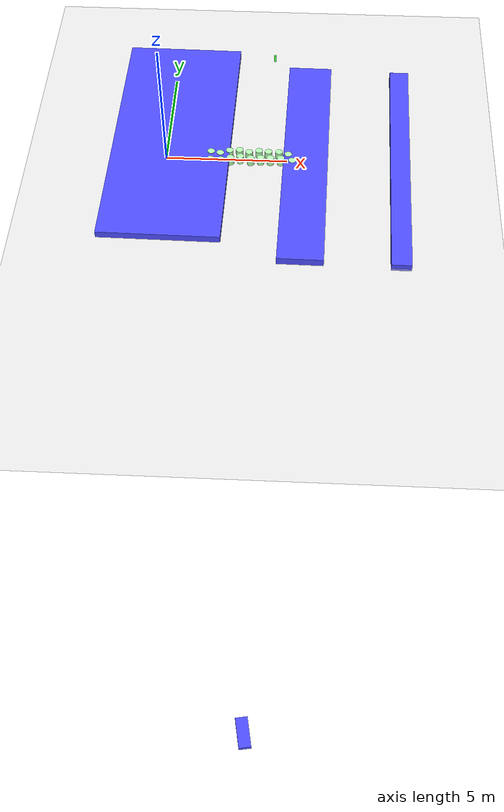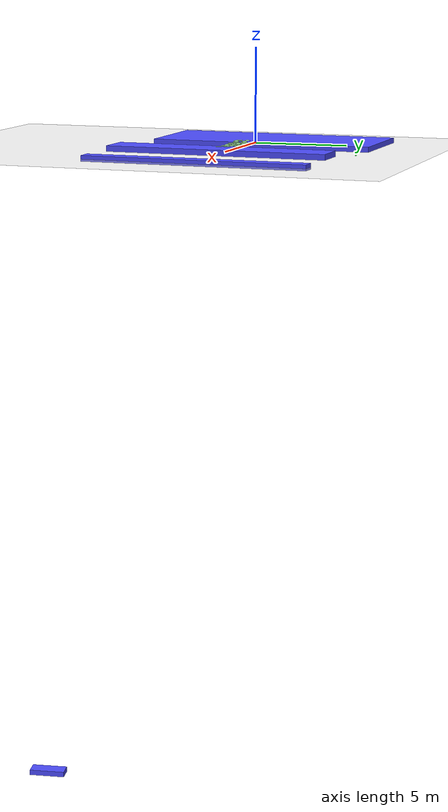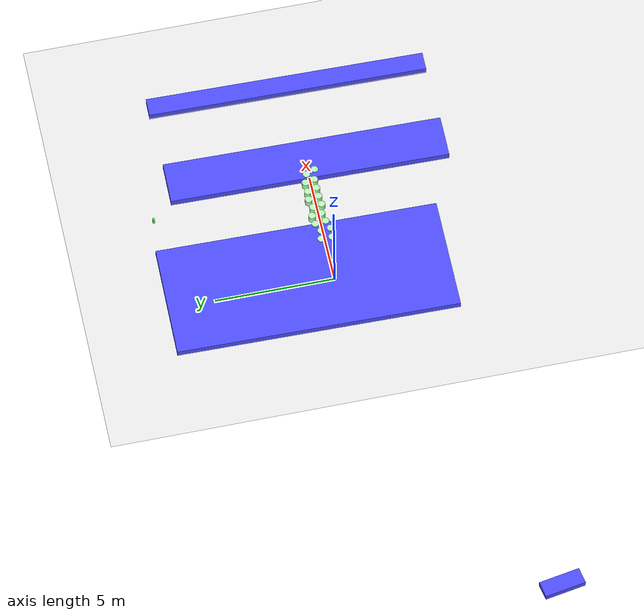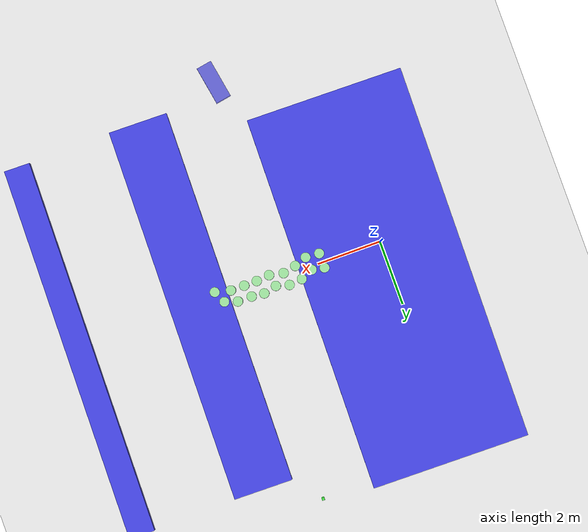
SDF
<sdf version="1.7">
 <world name="default">
  <light name="sun" type="directional">
   <pose>0 0 10 0 -0 0</pose>
   <diffuse>0.8 0.8 0.8 1</diffuse>
   <specular>0.2 0.2 0.2 1</specular>
   <attenuation>
    <range>1000</range>
    <constant>0.9</constant>
    <linear>0.01</linear>
    <quadratic>0.001</quadratic>
   </attenuation>
   <direction>-0.5 0.1 -0.9</direction>
   <spot><inner_angle>0</inner_angle><outer_angle>0</outer_angle><falloff>0</falloff></spot>
  </light>
  <model name="ground_plane">
   <static>1</static>
   <link name="link">
    <collision name="collision">
     <geometry><plane><normal>0 0 1</normal><size>100 100</size></plane></geometry>
     <surface><friction><ode><mu>100</mu><mu2>50</mu2></ode></friction></surface>
    </collision>
    <visual name="visual">
     <cast_shadows>0</cast_shadows>
     <geometry><plane><normal>0 0 1</normal><size>100 100</size></plane></geometry>
     <material>
      <script><uri>file://media/materials/scripts/gazebo.material</uri><name>Gazebo/Grey</name></script>
     </material>
    </visual>
   </link>
  </model>
  <gravity>0 0 -9.8</gravity>
  <magnetic_field>6e-06 2.3e-05 -4.2e-05</magnetic_field>
  <atmosphere type="adiabatic"/>
  <physics type="ode">
   <max_step_size>0.001</max_step_size>
   <real_time_factor>1</real_time_factor>
   <real_time_update_rate>1000</real_time_update_rate>
  </physics>
  <scene><ambient>0.4 0.4 0.4 1</ambient><background>0.7 0.7 0.7 1</background><shadows>1</shadows></scene>
  <spherical_coordinates>
   <surface_model>EARTH_WGS84</surface_model>
   <latitude_deg>0</latitude_deg>
   <longitude_deg>0</longitude_deg>
   <elevation>0</elevation>
   <heading_deg>0</heading_deg>
  </spherical_coordinates>
  <model name="ban_200_80_30_clone_clone">
   <link name="link">
    <inertial>
     <mass>1</mass>
     <inertia>
      <ixx>0.166667</ixx>
      <ixy>0</ixy>
      <ixz>0</ixz>
      <iyy>0.166667</iyy>
      <iyz>0</iyz>
      <izz>0.166667</izz>
     </inertia>
    </inertial>
    <visual name="visual">
     <geometry><box><size>2 0.8 0.3</size></box></geometry>
     <material>
      <script><name>Gazebo/Grey</name><uri>file://media/materials/scripts/gazebo.material</uri></script>
      <shader type="pixel"><normal_map>__default__</normal_map></shader>
      <ambient>0.3 0.3 1 1</ambient>
      <diffuse>0.7 0.7 0.7 1</diffuse>
      <specular>0.01 0.01 0.01 1</specular>
      <emissive>0 0 0 1</emissive>
     </material>
    </visual>
    <collision name="collision">
     <geometry><box><size>2 0.8 0.3</size></box></geometry>
     <surface>
      <friction>
       <ode><mu>1</mu><mu2>1</mu2><fdir1>0 0 0</fdir1><slip1>0</slip1><slip2>0</slip2></ode>
       <torsional>
        <coefficient>1</coefficient>
        <patch_radius>0</patch_radius>
        <surface_radius>0</surface_radius>
        <use_patch_radius>1</use_patch_radius>
        <ode><slip>0</slip></ode>
       </torsional>
      </friction>
      <bounce><restitution_coefficient>0</restitution_coefficient><threshold>1e+06</threshold></bounce>
      <contact>
       <collide_without_contact>0</collide_without_contact>
       <collide_without_contact_bitmask>1</collide_without_contact_bitmask>
       <collide_bitmask>1</collide_bitmask>
       <ode>
        <soft_cfm>0</soft_cfm>
        <soft_erp>0.2</soft_erp>
        <kp>1e+13</kp>
        <kd>1</kd>
        <max_vel>0.01</max_vel>
        <min_depth>0</min_depth>
       </ode>
       <bullet>
        <split_impulse>1</split_impulse>
        <split_impulse_penetration_threshold>-0.01</split_impulse_penetration_threshold>
        <soft_cfm>0</soft_cfm>
        <soft_erp>0.2</soft_erp>
        <kp>1e+13</kp>
        <kd>1</kd>
       </bullet>
      </contact>
     </surface>
    </collision>
   </link>
   <static>1</static>
   <pose>3.32802 -11.2985 -36.3188 0 0 -1.39548</pose>
  </model>
  <model name="ban_400_80_30_clone">
   <link name="link">
    <inertial>
     <mass>1</mass>
     <inertia>
      <ixx>0.166667</ixx>
      <ixy>0</ixy>
      <ixz>0</ixz>
      <iyy>0.166667</iyy>
      <iyz>0</iyz>
      <izz>0.166667</izz>
     </inertia>
    </inertial>
    <visual name="visual">
     <geometry><box><size>11.7457 0.8 0.3</size></box></geometry>
     <material>
      <script><name>Gazebo/Grey</name><uri>file://media/materials/scripts/gazebo.material</uri></script>
      <shader type="pixel"><normal_map>__default__</normal_map></shader>
      <ambient>0.3 0.3 1 1</ambient>
      <diffuse>0.7 0.7 0.7 1</diffuse>
      <specular>0.01 0.01 0.01 1</specular>
      <emissive>0 0 0 1</emissive>
     </material>
    </visual>
    <collision name="collision">
     <geometry><box><size>11.7457 0.8 0.3</size></box></geometry>
     <surface>
      <friction>
       <ode><mu>1</mu><mu2>1</mu2><fdir1>0 0 0</fdir1><slip1>0</slip1><slip2>0</slip2></ode>
       <torsional>
        <coefficient>1</coefficient>
        <patch_radius>0</patch_radius>
        <surface_radius>0</surface_radius>
        <use_patch_radius>1</use_patch_radius>
        <ode><slip>0</slip></ode>
       </torsional>
      </friction>
      <bounce><restitution_coefficient>0</restitution_coefficient><threshold>1e+06</threshold></bounce>
      <contact>
       <collide_without_contact>0</collide_without_contact>
       <collide_without_contact_bitmask>1</collide_without_contact_bitmask>
       <collide_bitmask>1</collide_bitmask>
       <ode>
        <soft_cfm>0</soft_cfm>
        <soft_erp>0.2</soft_erp>
        <kp>1e+13</kp>
        <kd>1</kd>
        <max_vel>0.01</max_vel>
        <min_depth>0</min_depth>
       </ode>
       <bullet>
        <split_impulse>1</split_impulse>
        <split_impulse_penetration_threshold>-0.01</split_impulse_penetration_threshold>
        <soft_cfm>0</soft_cfm>
        <soft_erp>0.2</soft_erp>
        <kp>1e+13</kp>
        <kd>1</kd>
       </bullet>
      </contact>
     </surface>
    </collision>
   </link>
   <static>1</static>
   <pose>9.68721 0.016567 0 0 -0 1.55763</pose>
  </model>
  <model name="mhz_8_30_clone">
   <link name="link">
    <inertial>
     <mass>1</mass>
     <inertia>
      <ixx>0.166667</ixx>
      <ixy>0</ixy>
      <ixz>0</ixz>
      <iyy>0.166667</iyy>
      <iyz>0</iyz>
      <izz>0.166667</izz>
     </inertia>
    </inertial>
    <visual name="visual">
     <geometry><box><size>0.08 0.08 0.3</size></box></geometry>
     <material>
      <script><name>Gazebo/Grey</name><uri>file://media/materials/scripts/gazebo.material</uri></script>
      <shader type="pixel"><normal_map>__default__</normal_map></shader>
      <ambient>0.3 1 0.3 1</ambient>
      <diffuse>0.7 0.7 0.7 1</diffuse>
      <specular>0.01 0.01 0.01 1</specular>
      <emissive>0 0 0 1</emissive>
     </material>
    </visual>
    <collision name="collision">
     <geometry><box><size>0.08 0.08 0.3</size></box></geometry>
     <surface>
      <friction>
       <ode><mu>1</mu><mu2>1</mu2><fdir1>0 0 0</fdir1><slip1>0</slip1><slip2>0</slip2></ode>
       <torsional>
        <coefficient>1</coefficient>
        <patch_radius>0</patch_radius>
        <surface_radius>0</surface_radius>
        <use_patch_radius>1</use_patch_radius>
        <ode><slip>0</slip></ode>
       </torsional>
      </friction>
      <bounce><restitution_coefficient>0</restitution_coefficient><threshold>1e+06</threshold></bounce>
      <contact>
       <collide_without_contact>0</collide_without_contact>
       <collide_without_contact_bitmask>1</collide_without_contact_bitmask>
       <collide_bitmask>1</collide_bitmask>
       <ode>
        <soft_cfm>0</soft_cfm>
        <soft_erp>0.2</soft_erp>
        <kp>1e+13</kp>
        <kd>1</kd>
        <max_vel>0.01</max_vel>
        <min_depth>0</min_depth>
       </ode>
       <bullet>
        <split_impulse>1</split_impulse>
        <split_impulse_penetration_threshold>-0.01</split_impulse_penetration_threshold>
        <soft_cfm>0</soft_cfm>
        <soft_erp>0.2</soft_erp>
        <kp>1e+13</kp>
        <kd>1</kd>
       </bullet>
      </contact>
     </surface>
    </collision>
   </link>
   <static>1</static>
   <pose>4.25594 6.71166 0.134436 0 -0 0</pose>
  </model>
  <model name="ban_400_80_30_clone_clone_clone">
   <link name="link">
    <inertial>
     <mass>1</mass>
     <inertia>
      <ixx>0.166667</ixx>
      <ixy>0</ixy>
      <ixz>0</ixz>
      <iyy>0.166667</iyy>
      <iyz>0</iyz>
      <izz>0.166667</izz>
     </inertia>
    </inertial>
    <visual name="visual">
     <geometry><box><size>11.703 1.83242 0.3</size></box></geometry>
     <material>
      <script><name>Gazebo/Grey</name><uri>file://media/materials/scripts/gazebo.material</uri></script>
      <shader type="pixel"><normal_map>__default__</normal_map></shader>
      <ambient>0.3 0.3 1 1</ambient>
      <diffuse>0.7 0.7 0.7 1</diffuse>
      <specular>0.01 0.01 0.01 1</specular>
      <emissive>0 0 0 1</emissive>
     </material>
    </visual>
    <collision name="collision">
     <geometry><box><size>11.703 1.83242 0.3</size></box></geometry>
     <surface>
      <friction>
       <ode><mu>1</mu><mu2>1</mu2><fdir1>0 0 0</fdir1><slip1>0</slip1><slip2>0</slip2></ode>
       <torsional>
        <coefficient>1</coefficient>
        <patch_radius>0</patch_radius>
        <surface_radius>0</surface_radius>
        <use_patch_radius>1</use_patch_radius>
        <ode><slip>0</slip></ode>
       </torsional>
      </friction>
      <bounce><restitution_coefficient>0</restitution_coefficient><threshold>1e+06</threshold></bounce>
      <contact>
       <collide_without_contact>0</collide_without_contact>
       <collide_without_contact_bitmask>1</collide_without_contact_bitmask>
       <collide_bitmask>1</collide_bitmask>
       <ode>
        <soft_cfm>0</soft_cfm>
        <soft_erp>0.2</soft_erp>
        <kp>1e+13</kp>
        <kd>1</kd>
        <max_vel>0.01</max_vel>
        <min_depth>0</min_depth>
       </ode>
       <bullet>
        <split_impulse>1</split_impulse>
        <split_impulse_penetration_threshold>-0.01</split_impulse_penetration_threshold>
        <soft_cfm>0</soft_cfm>
        <soft_erp>0.2</soft_erp>
        <kp>1e+13</kp>
        <kd>1</kd>
       </bullet>
      </contact>
     </surface>
    </collision>
   </link>
   <static>1</static>
   <pose>5.7738 -0.01357 0.139007 0 -0 1.55763</pose>
  </model>
  <model name="ban_400_80_30_clone_clone_0_clone_clone">
   <link name="link">
    <inertial>
     <mass>1</mass>
     <inertia>
      <ixx>0.166667</ixx>
      <ixy>0</ixy>
      <ixz>0</ixz>
      <iyy>0.166667</iyy>
      <iyz>0</iyz>
      <izz>0.166667</izz>
     </inertia>
    </inertial>
    <visual name="visual">
     <geometry><box><size>11.7457 4.91441 0.274752</size></box></geometry>
     <material>
      <script><name>Gazebo/Grey</name><uri>file://media/materials/scripts/gazebo.material</uri></script>
      <shader type="pixel"><normal_map>__default__</normal_map></shader>
      <ambient>0.3 0.3 1 1</ambient>
      <diffuse>0.7 0.7 0.7 1</diffuse>
      <specular>0.01 0.01 0.01 1</specular>
      <emissive>0 0 0 1</emissive>
     </material>
    </visual>
    <collision name="collision">
     <geometry><box><size>11.7457 4.91441 0.274752</size></box></geometry>
     <surface>
      <friction>
       <ode><mu>1</mu><mu2>1</mu2><fdir1>0 0 0</fdir1><slip1>0</slip1><slip2>0</slip2></ode>
       <torsional>
        <coefficient>1</coefficient>
        <patch_radius>0</patch_radius>
        <surface_radius>0</surface_radius>
        <use_patch_radius>1</use_patch_radius>
        <ode><slip>0</slip></ode>
       </torsional>
      </friction>
      <bounce><restitution_coefficient>0</restitution_coefficient><threshold>1e+06</threshold></bounce>
      <contact>
       <collide_without_contact>0</collide_without_contact>
       <collide_without_contact_bitmask>1</collide_without_contact_bitmask>
       <collide_bitmask>1</collide_bitmask>
       <ode>
        <soft_cfm>0</soft_cfm>
        <soft_erp>0.2</soft_erp>
        <kp>1e+13</kp>
        <kd>1</kd>
        <max_vel>0.01</max_vel>
        <min_depth>0</min_depth>
       </ode>
       <bullet>
        <split_impulse>1</split_impulse>
        <split_impulse_penetration_threshold>-0.01</split_impulse_penetration_threshold>
        <soft_cfm>0</soft_cfm>
        <soft_erp>0.2</soft_erp>
        <kp>1e+13</kp>
        <kd>1</kd>
       </bullet>
      </contact>
     </surface>
    </collision>
   </link>
   <static>1</static>
   <pose>0.174556 1.09139 0.138376 0 -0 1.55763</pose>
  </model>
  <model name="mhz_y_25_30_clone_13_clone_clone_9_clone_0_clone_clone_0_clone_0_clone_clone_clone_clone_clone_1">
   <link name="link">
    <inertial>
     <mass>1</mass>
     <inertia><ixx>0.145833</ixx><ixy>0</ixy><ixz>0</ixz><iyy>0.145833</iyy><iyz>0</iyz><izz>0.125</izz></inertia>
    </inertial>
    <visual name="visual">
     <geometry><cylinder><radius>0.151445</radius><length>0.3</length></cylinder></geometry>
     <material>
      <script><name>Gazebo/Grey</name><uri>file://media/materials/scripts/gazebo.material</uri></script>
      <shader type="pixel"><normal_map>__default__</normal_map></shader>
      <ambient>0 1 0 0</ambient>
      <diffuse>0.7 1 0.7 1</diffuse>
      <specular>0.01 0.01 0.01 1</specular>
      <emissive>0 0 0 1</emissive>
     </material>
    </visual>
    <collision name="collision">
     <geometry><cylinder><radius>0.151445</radius><length>0.3</length></cylinder></geometry>
     <surface>
      <friction>
       <ode><mu>1</mu><mu2>1</mu2><fdir1>0 0 0</fdir1><slip1>0</slip1><slip2>0</slip2></ode>
       <torsional>
        <coefficient>1</coefficient>
        <patch_radius>0</patch_radius>
        <surface_radius>0</surface_radius>
        <use_patch_radius>1</use_patch_radius>
        <ode><slip>0</slip></ode>
       </torsional>
      </friction>
      <bounce><restitution_coefficient>0</restitution_coefficient><threshold>1e+06</threshold></bounce>
      <contact>
       <collide_without_contact>0</collide_without_contact>
       <collide_without_contact_bitmask>1</collide_without_contact_bitmask>
       <collide_bitmask>1</collide_bitmask>
       <ode>
        <soft_cfm>0</soft_cfm>
        <soft_erp>0.2</soft_erp>
        <kp>1e+13</kp>
        <kd>1</kd>
        <max_vel>0.01</max_vel>
        <min_depth>0</min_depth>
       </ode>
       <bullet>
        <split_impulse>1</split_impulse>
        <split_impulse_penetration_threshold>-0.01</split_impulse_penetration_threshold>
        <soft_cfm>0</soft_cfm>
        <soft_erp>0.2</soft_erp>
        <kp>1e+13</kp>
        <kd>1</kd>
       </bullet>
      </contact>
     </surface>
    </collision>
   </link>
   <static>1</static>
   <pose>1.85711 0.174221 0.14679 0 -0 0</pose>
  </model>
  <model name="mhz_y_25_30_clone_13_clone_clone_9_clone_0_clone_clone_0_clone_0_clone_clone_clone_clone_clone_1_clone">
   <link name="link">
    <inertial>
     <mass>1</mass>
     <inertia><ixx>0.145833</ixx><ixy>0</ixy><ixz>0</ixz><iyy>0.145833</iyy><iyz>0</iyz><izz>0.125</izz></inertia>
    </inertial>
    <visual name="visual">
     <geometry><cylinder><radius>0.151445</radius><length>0.3</length></cylinder></geometry>
     <material>
      <script><name>Gazebo/Grey</name><uri>file://media/materials/scripts/gazebo.material</uri></script>
      <shader type="pixel"><normal_map>__default__</normal_map></shader>
      <ambient>0 1 0 0</ambient>
      <diffuse>0.7 1 0.7 1</diffuse>
      <specular>0.01 0.01 0.01 1</specular>
      <emissive>0 0 0 1</emissive>
     </material>
    </visual>
    <collision name="collision">
     <geometry><cylinder><radius>0.151445</radius><length>0.3</length></cylinder></geometry>
     <surface>
      <friction>
       <ode><mu>1</mu><mu2>1</mu2><fdir1>0 0 0</fdir1><slip1>0</slip1><slip2>0</slip2></ode>
       <torsional>
        <coefficient>1</coefficient>
        <patch_radius>0</patch_radius>
        <surface_radius>0</surface_radius>
        <use_patch_radius>1</use_patch_radius>
        <ode><slip>0</slip></ode>
       </torsional>
      </friction>
      <bounce><restitution_coefficient>0</restitution_coefficient><threshold>1e+06</threshold></bounce>
      <contact>
       <collide_without_contact>0</collide_without_contact>
       <collide_without_contact_bitmask>1</collide_without_contact_bitmask>
       <collide_bitmask>1</collide_bitmask>
       <ode>
        <soft_cfm>0</soft_cfm>
        <soft_erp>0.2</soft_erp>
        <kp>1e+13</kp>
        <kd>1</kd>
        <max_vel>0.01</max_vel>
        <min_depth>0</min_depth>
       </ode>
       <bullet>
        <split_impulse>1</split_impulse>
        <split_impulse_penetration_threshold>-0.01</split_impulse_penetration_threshold>
        <soft_cfm>0</soft_cfm>
        <soft_erp>0.2</soft_erp>
        <kp>1e+13</kp>
        <kd>1</kd>
       </bullet>
      </contact>
     </surface>
    </collision>
   </link>
   <static>1</static>
   <pose>1.86388 -0.284259 0.14679 0 -0 0</pose>
  </model>
  <model name="mhz_y_25_30_clone_13_clone_clone_9_clone_0_clone_clone_0_clone_0_clone_clone_clone_clone_clone_1_clone_clone">
   <link name="link">
    <inertial>
     <mass>1</mass>
     <inertia><ixx>0.145833</ixx><ixy>0</ixy><ixz>0</ixz><iyy>0.145833</iyy><iyz>0</iyz><izz>0.125</izz></inertia>
    </inertial>
    <visual name="visual">
     <geometry><cylinder><radius>0.151445</radius><length>0.3</length></cylinder></geometry>
     <material>
      <script><name>Gazebo/Grey</name><uri>file://media/materials/scripts/gazebo.material</uri></script>
      <shader type="pixel"><normal_map>__default__</normal_map></shader>
      <ambient>0 1 0 0</ambient>
      <diffuse>0.7 1 0.7 1</diffuse>
      <specular>0.01 0.01 0.01 1</specular>
      <emissive>0 0 0 1</emissive>
     </material>
    </visual>
    <collision name="collision">
     <geometry><cylinder><radius>0.151445</radius><length>0.3</length></cylinder></geometry>
     <surface>
      <friction>
       <ode><mu>1</mu><mu2>1</mu2><fdir1>0 0 0</fdir1><slip1>0</slip1><slip2>0</slip2></ode>
       <torsional>
        <coefficient>1</coefficient>
        <patch_radius>0</patch_radius>
        <surface_radius>0</surface_radius>
        <use_patch_radius>1</use_patch_radius>
        <ode><slip>0</slip></ode>
       </torsional>
      </friction>
      <bounce><restitution_coefficient>0</restitution_coefficient><threshold>1e+06</threshold></bounce>
      <contact>
       <collide_without_contact>0</collide_without_contact>
       <collide_without_contact_bitmask>1</collide_without_contact_bitmask>
       <collide_bitmask>1</collide_bitmask>
       <ode>
        <soft_cfm>0</soft_cfm>
        <soft_erp>0.2</soft_erp>
        <kp>1e+13</kp>
        <kd>1</kd>
        <max_vel>0.01</max_vel>
        <min_depth>0</min_depth>
       </ode>
       <bullet>
        <split_impulse>1</split_impulse>
        <split_impulse_penetration_threshold>-0.01</split_impulse_penetration_threshold>
        <soft_cfm>0</soft_cfm>
        <soft_erp>0.2</soft_erp>
        <kp>1e+13</kp>
        <kd>1</kd>
       </bullet>
      </contact>
     </surface>
    </collision>
   </link>
   <static>1</static>
   <pose>2.29127 -0.313484 0.14679 0 -0 0</pose>
  </model>
  <model name="mhz_y_25_30_clone_13_clone_clone_9_clone_0_clone_clone_0_clone_0_clone_clone_clone_clone_clone_1_clone_clone_0">
   <link name="link">
    <inertial>
     <mass>1</mass>
     <inertia><ixx>0.145833</ixx><ixy>0</ixy><ixz>0</ixz><iyy>0.145833</iyy><iyz>0</iyz><izz>0.125</izz></inertia>
    </inertial>
    <visual name="visual">
     <geometry><cylinder><radius>0.151445</radius><length>0.3</length></cylinder></geometry>
     <material>
      <script><name>Gazebo/Grey</name><uri>file://media/materials/scripts/gazebo.material</uri></script>
      <shader type="pixel"><normal_map>__default__</normal_map></shader>
      <ambient>0 1 0 0</ambient>
      <diffuse>0.7 1 0.7 1</diffuse>
      <specular>0.01 0.01 0.01 1</specular>
      <emissive>0 0 0 1</emissive>
     </material>
    </visual>
    <collision name="collision">
     <geometry><cylinder><radius>0.151445</radius><length>0.3</length></cylinder></geometry>
     <surface>
      <friction>
       <ode><mu>1</mu><mu2>1</mu2><fdir1>0 0 0</fdir1><slip1>0</slip1><slip2>0</slip2></ode>
       <torsional>
        <coefficient>1</coefficient>
        <patch_radius>0</patch_radius>
        <surface_radius>0</surface_radius>
        <use_patch_radius>1</use_patch_radius>
        <ode><slip>0</slip></ode>
       </torsional>
      </friction>
      <bounce><restitution_coefficient>0</restitution_coefficient><threshold>1e+06</threshold></bounce>
      <contact>
       <collide_without_contact>0</collide_without_contact>
       <collide_without_contact_bitmask>1</collide_without_contact_bitmask>
       <collide_bitmask>1</collide_bitmask>
       <ode>
        <soft_cfm>0</soft_cfm>
        <soft_erp>0.2</soft_erp>
        <kp>1e+13</kp>
        <kd>1</kd>
        <max_vel>0.01</max_vel>
        <min_depth>0</min_depth>
       </ode>
       <bullet>
        <split_impulse>1</split_impulse>
        <split_impulse_penetration_threshold>-0.01</split_impulse_penetration_threshold>
        <soft_cfm>0</soft_cfm>
        <soft_erp>0.2</soft_erp>
        <kp>1e+13</kp>
        <kd>1</kd>
       </bullet>
      </contact>
     </surface>
    </collision>
   </link>
   <static>1</static>
   <pose>2.24013 0.098647 0.14679 0 -0 0</pose>
  </model>
  <model name="mhz_y_25_30_clone_13_clone_clone_9_clone_0_clone_clone_0_clone_0_clone_clone_clone_clone_clone_1_clone_clone_1">
   <link name="link">
    <inertial>
     <mass>1</mass>
     <inertia><ixx>0.145833</ixx><ixy>0</ixy><ixz>0</ixz><iyy>0.145833</iyy><iyz>0</iyz><izz>0.125</izz></inertia>
    </inertial>
    <visual name="visual">
     <geometry><cylinder><radius>0.151445</radius><length>0.3</length></cylinder></geometry>
     <material>
      <script><name>Gazebo/Grey</name><uri>file://media/materials/scripts/gazebo.material</uri></script>
      <shader type="pixel"><normal_map>__default__</normal_map></shader>
      <ambient>0 1 0 0</ambient>
      <diffuse>0.7 1 0.7 1</diffuse>
      <specular>0.01 0.01 0.01 1</specular>
      <emissive>0 0 0 1</emissive>
     </material>
    </visual>
    <collision name="collision">
     <geometry><cylinder><radius>0.151445</radius><length>0.3</length></cylinder></geometry>
     <surface>
      <friction>
       <ode><mu>1</mu><mu2>1</mu2><fdir1>0 0 0</fdir1><slip1>0</slip1><slip2>0</slip2></ode>
       <torsional>
        <coefficient>1</coefficient>
        <patch_radius>0</patch_radius>
        <surface_radius>0</surface_radius>
        <use_patch_radius>1</use_patch_radius>
        <ode><slip>0</slip></ode>
       </torsional>
      </friction>
      <bounce><restitution_coefficient>0</restitution_coefficient><threshold>1e+06</threshold></bounce>
      <contact>
       <collide_without_contact>0</collide_without_contact>
       <collide_without_contact_bitmask>1</collide_without_contact_bitmask>
       <collide_bitmask>1</collide_bitmask>
       <ode>
        <soft_cfm>0</soft_cfm>
        <soft_erp>0.2</soft_erp>
        <kp>1e+13</kp>
        <kd>1</kd>
        <max_vel>0.01</max_vel>
        <min_depth>0</min_depth>
       </ode>
       <bullet>
        <split_impulse>1</split_impulse>
        <split_impulse_penetration_threshold>-0.01</split_impulse_penetration_threshold>
        <soft_cfm>0</soft_cfm>
        <soft_erp>0.2</soft_erp>
        <kp>1e+13</kp>
        <kd>1</kd>
       </bullet>
      </contact>
     </surface>
    </collision>
   </link>
   <static>1</static>
   <pose>2.67361 -0.180809 0.14679 0 -0 0</pose>
  </model>
  <model name="mhz_y_25_30_clone_13_clone_clone_9_clone_0_clone_clone_0_clone_0_clone_clone_clone_clone_clone_1_clone_clone_2">
   <link name="link">
    <inertial>
     <mass>1</mass>
     <inertia><ixx>0.145833</ixx><ixy>0</ixy><ixz>0</ixz><iyy>0.145833</iyy><iyz>0</iyz><izz>0.125</izz></inertia>
    </inertial>
    <visual name="visual">
     <geometry><cylinder><radius>0.151445</radius><length>0.3</length></cylinder></geometry>
     <material>
      <script><name>Gazebo/Grey</name><uri>file://media/materials/scripts/gazebo.material</uri></script>
      <shader type="pixel"><normal_map>__default__</normal_map></shader>
      <ambient>0 1 0 0</ambient>
      <diffuse>0.7 1 0.7 1</diffuse>
      <specular>0.01 0.01 0.01 1</specular>
      <emissive>0 0 0 1</emissive>
     </material>
    </visual>
    <collision name="collision">
     <geometry><cylinder><radius>0.151445</radius><length>0.3</length></cylinder></geometry>
     <surface>
      <friction>
       <ode><mu>1</mu><mu2>1</mu2><fdir1>0 0 0</fdir1><slip1>0</slip1><slip2>0</slip2></ode>
       <torsional>
        <coefficient>1</coefficient>
        <patch_radius>0</patch_radius>
        <surface_radius>0</surface_radius>
        <use_patch_radius>1</use_patch_radius>
        <ode><slip>0</slip></ode>
       </torsional>
      </friction>
      <bounce><restitution_coefficient>0</restitution_coefficient><threshold>1e+06</threshold></bounce>
      <contact>
       <collide_without_contact>0</collide_without_contact>
       <collide_without_contact_bitmask>1</collide_without_contact_bitmask>
       <collide_bitmask>1</collide_bitmask>
       <ode>
        <soft_cfm>0</soft_cfm>
        <soft_erp>0.2</soft_erp>
        <kp>1e+13</kp>
        <kd>1</kd>
        <max_vel>0.01</max_vel>
        <min_depth>0</min_depth>
       </ode>
       <bullet>
        <split_impulse>1</split_impulse>
        <split_impulse_penetration_threshold>-0.01</split_impulse_penetration_threshold>
        <soft_cfm>0</soft_cfm>
        <soft_erp>0.2</soft_erp>
        <kp>1e+13</kp>
        <kd>1</kd>
       </bullet>
      </contact>
     </surface>
    </collision>
   </link>
   <static>1</static>
   <pose>2.61578 0.259801 0.14679 0 -0 0</pose>
  </model>
  <model name="mhz_y_25_30_clone_13_clone_clone_9_clone_0_clone_clone_0_clone_0_clone_clone_clone_clone_clone_1_clone_clone_2_clone">
   <link name="link">
    <inertial>
     <mass>1</mass>
     <inertia><ixx>0.145833</ixx><ixy>0</ixy><ixz>0</ixz><iyy>0.145833</iyy><iyz>0</iyz><izz>0.125</izz></inertia>
    </inertial>
    <visual name="visual">
     <geometry><cylinder><radius>0.151445</radius><length>0.3</length></cylinder></geometry>
     <material>
      <script><name>Gazebo/Grey</name><uri>file://media/materials/scripts/gazebo.material</uri></script>
      <shader type="pixel"><normal_map>__default__</normal_map></shader>
      <ambient>0 1 0 0</ambient>
      <diffuse>0.7 1 0.7 1</diffuse>
      <specular>0.01 0.01 0.01 1</specular>
      <emissive>0 0 0 1</emissive>
     </material>
    </visual>
    <collision name="collision">
     <geometry><cylinder><radius>0.151445</radius><length>0.3</length></cylinder></geometry>
     <surface>
      <friction>
       <ode><mu>1</mu><mu2>1</mu2><fdir1>0 0 0</fdir1><slip1>0</slip1><slip2>0</slip2></ode>
       <torsional>
        <coefficient>1</coefficient>
        <patch_radius>0</patch_radius>
        <surface_radius>0</surface_radius>
        <use_patch_radius>1</use_patch_radius>
        <ode><slip>0</slip></ode>
       </torsional>
      </friction>
      <bounce><restitution_coefficient>0</restitution_coefficient><threshold>1e+06</threshold></bounce>
      <contact>
       <collide_without_contact>0</collide_without_contact>
       <collide_without_contact_bitmask>1</collide_without_contact_bitmask>
       <collide_bitmask>1</collide_bitmask>
       <ode>
        <soft_cfm>0</soft_cfm>
        <soft_erp>0.2</soft_erp>
        <kp>1e+13</kp>
        <kd>1</kd>
        <max_vel>0.01</max_vel>
        <min_depth>0</min_depth>
       </ode>
       <bullet>
        <split_impulse>1</split_impulse>
        <split_impulse_penetration_threshold>-0.01</split_impulse_penetration_threshold>
        <soft_cfm>0</soft_cfm>
        <soft_erp>0.2</soft_erp>
        <kp>1e+13</kp>
        <kd>1</kd>
       </bullet>
      </contact>
     </surface>
    </collision>
   </link>
   <static>1</static>
   <pose>3.02791 0.302856 0.14679 0 -0 0</pose>
  </model>
  <model name="mhz_y_25_30_clone_13_clone_clone_9_clone_0_clone_clone_0_clone_0_clone_clone_clone_clone_clone_1_clone_clone_2_clone_0">
   <link name="link">
    <inertial>
     <mass>1</mass>
     <inertia><ixx>0.145833</ixx><ixy>0</ixy><ixz>0</ixz><iyy>0.145833</iyy><iyz>0</iyz><izz>0.125</izz></inertia>
    </inertial>
    <visual name="visual">
     <geometry><cylinder><radius>0.151445</radius><length>0.3</length></cylinder></geometry>
     <material>
      <script><name>Gazebo/Grey</name><uri>file://media/materials/scripts/gazebo.material</uri></script>
      <shader type="pixel"><normal_map>__default__</normal_map></shader>
      <ambient>0 1 0 0</ambient>
      <diffuse>0.7 1 0.7 1</diffuse>
      <specular>0.01 0.01 0.01 1</specular>
      <emissive>0 0 0 1</emissive>
     </material>
    </visual>
    <collision name="collision">
     <geometry><cylinder><radius>0.151445</radius><length>0.3</length></cylinder></geometry>
     <surface>
      <friction>
       <ode><mu>1</mu><mu2>1</mu2><fdir1>0 0 0</fdir1><slip1>0</slip1><slip2>0</slip2></ode>
       <torsional>
        <coefficient>1</coefficient>
        <patch_radius>0</patch_radius>
        <surface_radius>0</surface_radius>
        <use_patch_radius>1</use_patch_radius>
        <ode><slip>0</slip></ode>
       </torsional>
      </friction>
      <bounce><restitution_coefficient>0</restitution_coefficient><threshold>1e+06</threshold></bounce>
      <contact>
       <collide_without_contact>0</collide_without_contact>
       <collide_without_contact_bitmask>1</collide_without_contact_bitmask>
       <collide_bitmask>1</collide_bitmask>
       <ode>
        <soft_cfm>0</soft_cfm>
        <soft_erp>0.2</soft_erp>
        <kp>1e+13</kp>
        <kd>1</kd>
        <max_vel>0.01</max_vel>
        <min_depth>0</min_depth>
       </ode>
       <bullet>
        <split_impulse>1</split_impulse>
        <split_impulse_penetration_threshold>-0.01</split_impulse_penetration_threshold>
        <soft_cfm>0</soft_cfm>
        <soft_erp>0.2</soft_erp>
        <kp>1e+13</kp>
        <kd>1</kd>
       </bullet>
      </contact>
     </surface>
    </collision>
   </link>
   <static>1</static>
   <pose>3.07671 -0.094042 0.14679 0 -0 0</pose>
  </model>
  <model name="mhz_y_25_30_clone_13_clone_clone_9_clone_0_clone_clone_0_clone_0_clone_clone_clone_clone_clone_1_clone_clone_2_clone_1">
   <link name="link">
    <inertial>
     <mass>1</mass>
     <inertia><ixx>0.145833</ixx><ixy>0</ixy><ixz>0</ixz><iyy>0.145833</iyy><iyz>0</iyz><izz>0.125</izz></inertia>
    </inertial>
    <visual name="visual">
     <geometry><cylinder><radius>0.151445</radius><length>0.3</length></cylinder></geometry>
     <material>
      <script><name>Gazebo/Grey</name><uri>file://media/materials/scripts/gazebo.material</uri></script>
      <shader type="pixel"><normal_map>__default__</normal_map></shader>
      <ambient>0 1 0 0</ambient>
      <diffuse>0.7 1 0.7 1</diffuse>
      <specular>0.01 0.01 0.01 1</specular>
      <emissive>0 0 0 1</emissive>
     </material>
    </visual>
    <collision name="collision">
     <geometry><cylinder><radius>0.151445</radius><length>0.3</length></cylinder></geometry>
     <surface>
      <friction>
       <ode><mu>1</mu><mu2>1</mu2><fdir1>0 0 0</fdir1><slip1>0</slip1><slip2>0</slip2></ode>
       <torsional>
        <coefficient>1</coefficient>
        <patch_radius>0</patch_radius>
        <surface_radius>0</surface_radius>
        <use_patch_radius>1</use_patch_radius>
        <ode><slip>0</slip></ode>
       </torsional>
      </friction>
      <bounce><restitution_coefficient>0</restitution_coefficient><threshold>1e+06</threshold></bounce>
      <contact>
       <collide_without_contact>0</collide_without_contact>
       <collide_without_contact_bitmask>1</collide_without_contact_bitmask>
       <collide_bitmask>1</collide_bitmask>
       <ode>
        <soft_cfm>0</soft_cfm>
        <soft_erp>0.2</soft_erp>
        <kp>1e+13</kp>
        <kd>1</kd>
        <max_vel>0.01</max_vel>
        <min_depth>0</min_depth>
       </ode>
       <bullet>
        <split_impulse>1</split_impulse>
        <split_impulse_penetration_threshold>-0.01</split_impulse_penetration_threshold>
        <soft_cfm>0</soft_cfm>
        <soft_erp>0.2</soft_erp>
        <kp>1e+13</kp>
        <kd>1</kd>
       </bullet>
      </contact>
     </surface>
    </collision>
   </link>
   <static>1</static>
   <pose>3.42728 0.191941 0.14679 0 -0 0</pose>
  </model>
  <model name="mhz_y_25_30_clone_13_clone_clone_9_clone_0_clone_clone_0_clone_0_clone_clone_clone_clone_clone_1_clone_clone_2_clone_2">
   <link name="link">
    <inertial>
     <mass>1</mass>
     <inertia><ixx>0.145833</ixx><ixy>0</ixy><ixz>0</ixz><iyy>0.145833</iyy><iyz>0</iyz><izz>0.125</izz></inertia>
    </inertial>
    <visual name="visual">
     <geometry><cylinder><radius>0.151445</radius><length>0.3</length></cylinder></geometry>
     <material>
      <script><name>Gazebo/Grey</name><uri>file://media/materials/scripts/gazebo.material</uri></script>
      <shader type="pixel"><normal_map>__default__</normal_map></shader>
      <ambient>0 1 0 0</ambient>
      <diffuse>0.7 1 0.7 1</diffuse>
      <specular>0.01 0.01 0.01 1</specular>
      <emissive>0 0 0 1</emissive>
     </material>
    </visual>
    <collision name="collision">
     <geometry><cylinder><radius>0.151445</radius><length>0.3</length></cylinder></geometry>
     <surface>
      <friction>
       <ode><mu>1</mu><mu2>1</mu2><fdir1>0 0 0</fdir1><slip1>0</slip1><slip2>0</slip2></ode>
       <torsional>
        <coefficient>1</coefficient>
        <patch_radius>0</patch_radius>
        <surface_radius>0</surface_radius>
        <use_patch_radius>1</use_patch_radius>
        <ode><slip>0</slip></ode>
       </torsional>
      </friction>
      <bounce><restitution_coefficient>0</restitution_coefficient><threshold>1e+06</threshold></bounce>
      <contact>
       <collide_without_contact>0</collide_without_contact>
       <collide_without_contact_bitmask>1</collide_without_contact_bitmask>
       <collide_bitmask>1</collide_bitmask>
       <ode>
        <soft_cfm>0</soft_cfm>
        <soft_erp>0.2</soft_erp>
        <kp>1e+13</kp>
        <kd>1</kd>
        <max_vel>0.01</max_vel>
        <min_depth>0</min_depth>
       </ode>
       <bullet>
        <split_impulse>1</split_impulse>
        <split_impulse_penetration_threshold>-0.01</split_impulse_penetration_threshold>
        <soft_cfm>0</soft_cfm>
        <soft_erp>0.2</soft_erp>
        <kp>1e+13</kp>
        <kd>1</kd>
       </bullet>
      </contact>
     </surface>
    </collision>
   </link>
   <static>1</static>
   <pose>3.51087 -0.185526 0.14679 0 -0 0</pose>
  </model>
  <model name="mhz_y_25_30_clone_13_clone_clone_9_clone_0_clone_clone_0_clone_0_clone_clone_clone_clone_clone_1_clone_clone_2_clone_1_clone">
   <link name="link">
    <inertial>
     <mass>1</mass>
     <inertia><ixx>0.145833</ixx><ixy>0</ixy><ixz>0</ixz><iyy>0.145833</iyy><iyz>0</iyz><izz>0.125</izz></inertia>
    </inertial>
    <visual name="visual">
     <geometry><cylinder><radius>0.151445</radius><length>0.3</length></cylinder></geometry>
     <material>
      <script><name>Gazebo/Grey</name><uri>file://media/materials/scripts/gazebo.material</uri></script>
      <shader type="pixel"><normal_map>__default__</normal_map></shader>
      <ambient>0 1 0 0</ambient>
      <diffuse>0.7 1 0.7 1</diffuse>
      <specular>0.01 0.01 0.01 1</specular>
      <emissive>0 0 0 1</emissive>
     </material>
    </visual>
    <collision name="collision">
     <geometry><cylinder><radius>0.151445</radius><length>0.3</length></cylinder></geometry>
     <surface>
      <friction>
       <ode><mu>1</mu><mu2>1</mu2><fdir1>0 0 0</fdir1><slip1>0</slip1><slip2>0</slip2></ode>
       <torsional>
        <coefficient>1</coefficient>
        <patch_radius>0</patch_radius>
        <surface_radius>0</surface_radius>
        <use_patch_radius>1</use_patch_radius>
        <ode><slip>0</slip></ode>
       </torsional>
      </friction>
      <bounce><restitution_coefficient>0</restitution_coefficient><threshold>1e+06</threshold></bounce>
      <contact>
       <collide_without_contact>0</collide_without_contact>
       <collide_without_contact_bitmask>1</collide_without_contact_bitmask>
       <collide_bitmask>1</collide_bitmask>
       <ode>
        <soft_cfm>0</soft_cfm>
        <soft_erp>0.2</soft_erp>
        <kp>1e+13</kp>
        <kd>1</kd>
        <max_vel>0.01</max_vel>
        <min_depth>0</min_depth>
       </ode>
       <bullet>
        <split_impulse>1</split_impulse>
        <split_impulse_penetration_threshold>-0.01</split_impulse_penetration_threshold>
        <soft_cfm>0</soft_cfm>
        <soft_erp>0.2</soft_erp>
        <kp>1e+13</kp>
        <kd>1</kd>
       </bullet>
      </contact>
     </surface>
    </collision>
   </link>
   <static>1</static>
   <pose>3.83322 0.285757 0.14679 0 -0 0</pose>
  </model>
  <model name="mhz_y_25_30_clone_13_clone_clone_9_clone_0_clone_clone_0_clone_0_clone_clone_clone_clone_clone_1_clone_clone_2_clone_1_clone_0">
   <link name="link">
    <inertial>
     <mass>1</mass>
     <inertia><ixx>0.145833</ixx><ixy>0</ixy><ixz>0</ixz><iyy>0.145833</iyy><iyz>0</iyz><izz>0.125</izz></inertia>
    </inertial>
    <visual name="visual">
     <geometry><cylinder><radius>0.151445</radius><length>0.3</length></cylinder></geometry>
     <material>
      <script><name>Gazebo/Grey</name><uri>file://media/materials/scripts/gazebo.material</uri></script>
      <shader type="pixel"><normal_map>__default__</normal_map></shader>
      <ambient>0 1 0 0</ambient>
      <diffuse>0.7 1 0.7 1</diffuse>
      <specular>0.01 0.01 0.01 1</specular>
      <emissive>0 0 0 1</emissive>
     </material>
    </visual>
    <collision name="collision">
     <geometry><cylinder><radius>0.151445</radius><length>0.3</length></cylinder></geometry>
     <surface>
      <friction>
       <ode><mu>1</mu><mu2>1</mu2><fdir1>0 0 0</fdir1><slip1>0</slip1><slip2>0</slip2></ode>
       <torsional>
        <coefficient>1</coefficient>
        <patch_radius>0</patch_radius>
        <surface_radius>0</surface_radius>
        <use_patch_radius>1</use_patch_radius>
        <ode><slip>0</slip></ode>
       </torsional>
      </friction>
      <bounce><restitution_coefficient>0</restitution_coefficient><threshold>1e+06</threshold></bounce>
      <contact>
       <collide_without_contact>0</collide_without_contact>
       <collide_without_contact_bitmask>1</collide_without_contact_bitmask>
       <collide_bitmask>1</collide_bitmask>
       <ode>
        <soft_cfm>0</soft_cfm>
        <soft_erp>0.2</soft_erp>
        <kp>1e+13</kp>
        <kd>1</kd>
        <max_vel>0.01</max_vel>
        <min_depth>0</min_depth>
       </ode>
       <bullet>
        <split_impulse>1</split_impulse>
        <split_impulse_penetration_threshold>-0.01</split_impulse_penetration_threshold>
        <soft_cfm>0</soft_cfm>
        <soft_erp>0.2</soft_erp>
        <kp>1e+13</kp>
        <kd>1</kd>
       </bullet>
      </contact>
     </surface>
    </collision>
   </link>
   <static>1</static>
   <pose>3.92128 -0.144651 0.14679 0 -0 0</pose>
  </model>
  <model name="mhz_y_25_30_clone_13_clone_clone_9_clone_0_clone_clone_0_clone_0_clone_clone_clone_clone_clone_1_clone_clone_2_clone_1_clone_1">
   <link name="link">
    <inertial>
     <mass>1</mass>
     <inertia><ixx>0.145833</ixx><ixy>0</ixy><ixz>0</ixz><iyy>0.145833</iyy><iyz>0</iyz><izz>0.125</izz></inertia>
    </inertial>
    <visual name="visual">
     <geometry><cylinder><radius>0.151445</radius><length>0.3</length></cylinder></geometry>
     <material>
      <script><name>Gazebo/Grey</name><uri>file://media/materials/scripts/gazebo.material</uri></script>
      <shader type="pixel"><normal_map>__default__</normal_map></shader>
      <ambient>0 1 0 0</ambient>
      <diffuse>0.7 1 0.7 1</diffuse>
      <specular>0.01 0.01 0.01 1</specular>
      <emissive>0 0 0 1</emissive>
     </material>
    </visual>
    <collision name="collision">
     <geometry><cylinder><radius>0.151445</radius><length>0.3</length></cylinder></geometry>
     <surface>
      <friction>
       <ode><mu>1</mu><mu2>1</mu2><fdir1>0 0 0</fdir1><slip1>0</slip1><slip2>0</slip2></ode>
       <torsional>
        <coefficient>1</coefficient>
        <patch_radius>0</patch_radius>
        <surface_radius>0</surface_radius>
        <use_patch_radius>1</use_patch_radius>
        <ode><slip>0</slip></ode>
       </torsional>
      </friction>
      <bounce><restitution_coefficient>0</restitution_coefficient><threshold>1e+06</threshold></bounce>
      <contact>
       <collide_without_contact>0</collide_without_contact>
       <collide_without_contact_bitmask>1</collide_without_contact_bitmask>
       <collide_bitmask>1</collide_bitmask>
       <ode>
        <soft_cfm>0</soft_cfm>
        <soft_erp>0.2</soft_erp>
        <kp>1e+13</kp>
        <kd>1</kd>
        <max_vel>0.01</max_vel>
        <min_depth>0</min_depth>
       </ode>
       <bullet>
        <split_impulse>1</split_impulse>
        <split_impulse_penetration_threshold>-0.01</split_impulse_penetration_threshold>
        <soft_cfm>0</soft_cfm>
        <soft_erp>0.2</soft_erp>
        <kp>1e+13</kp>
        <kd>1</kd>
       </bullet>
      </contact>
     </surface>
    </collision>
   </link>
   <static>1</static>
   <pose>4.22493 0.244261 0.14679 0 -0 0</pose>
  </model>
  <model name="mhz_y_25_30_clone_13_clone_clone_9_clone_0_clone_clone_0_clone_0_clone_clone_clone_clone_clone_1_clone_clone_2_clone_1_clone_2">
   <link name="link">
    <inertial>
     <mass>1</mass>
     <inertia><ixx>0.145833</ixx><ixy>0</ixy><ixz>0</ixz><iyy>0.145833</iyy><iyz>0</iyz><izz>0.125</izz></inertia>
    </inertial>
    <visual name="visual">
     <geometry><cylinder><radius>0.151445</radius><length>0.3</length></cylinder></geometry>
     <material>
      <script><name>Gazebo/Grey</name><uri>file://media/materials/scripts/gazebo.material</uri></script>
      <shader type="pixel"><normal_map>__default__</normal_map></shader>
      <ambient>0 1 0 0</ambient>
      <diffuse>0.7 1 0.7 1</diffuse>
      <specular>0.01 0.01 0.01 1</specular>
      <emissive>0 0 0 1</emissive>
     </material>
    </visual>
    <collision name="collision">
     <geometry><cylinder><radius>0.151445</radius><length>0.3</length></cylinder></geometry>
     <surface>
      <friction>
       <ode><mu>1</mu><mu2>1</mu2><fdir1>0 0 0</fdir1><slip1>0</slip1><slip2>0</slip2></ode>
       <torsional>
        <coefficient>1</coefficient>
        <patch_radius>0</patch_radius>
        <surface_radius>0</surface_radius>
        <use_patch_radius>1</use_patch_radius>
        <ode><slip>0</slip></ode>
       </torsional>
      </friction>
      <bounce><restitution_coefficient>0</restitution_coefficient><threshold>1e+06</threshold></bounce>
      <contact>
       <collide_without_contact>0</collide_without_contact>
       <collide_without_contact_bitmask>1</collide_without_contact_bitmask>
       <collide_bitmask>1</collide_bitmask>
       <ode>
        <soft_cfm>0</soft_cfm>
        <soft_erp>0.2</soft_erp>
        <kp>1e+13</kp>
        <kd>1</kd>
        <max_vel>0.01</max_vel>
        <min_depth>0</min_depth>
       </ode>
       <bullet>
        <split_impulse>1</split_impulse>
        <split_impulse_penetration_threshold>-0.01</split_impulse_penetration_threshold>
        <soft_cfm>0</soft_cfm>
        <soft_erp>0.2</soft_erp>
        <kp>1e+13</kp>
        <kd>1</kd>
       </bullet>
      </contact>
     </surface>
    </collision>
   </link>
   <static>1</static>
   <pose>4.32474 -0.14016 0.14679 0 -0 0</pose>
  </model>
  <model name="mhz_y_25_30_clone_13_clone_clone_9_clone_0_clone_clone_0_clone_0_clone_clone_clone_clone_clone_1_clone_clone_2_clone_1_clone_3">
   <link name="link">
    <inertial>
     <mass>1</mass>
     <inertia><ixx>0.145833</ixx><ixy>0</ixy><ixz>0</ixz><iyy>0.145833</iyy><iyz>0</iyz><izz>0.125</izz></inertia>
    </inertial>
    <visual name="visual">
     <geometry><cylinder><radius>0.151445</radius><length>0.3</length></cylinder></geometry>
     <material>
      <script><name>Gazebo/Grey</name><uri>file://media/materials/scripts/gazebo.material</uri></script>
      <shader type="pixel"><normal_map>__default__</normal_map></shader>
      <ambient>0 1 0 0</ambient>
      <diffuse>0.7 1 0.7 1</diffuse>
      <specular>0.01 0.01 0.01 1</specular>
      <emissive>0 0 0 1</emissive>
     </material>
    </visual>
    <collision name="collision">
     <geometry><cylinder><radius>0.151445</radius><length>0.3</length></cylinder></geometry>
     <surface>
      <friction>
       <ode><mu>1</mu><mu2>1</mu2><fdir1>0 0 0</fdir1><slip1>0</slip1><slip2>0</slip2></ode>
       <torsional>
        <coefficient>1</coefficient>
        <patch_radius>0</patch_radius>
        <surface_radius>0</surface_radius>
        <use_patch_radius>1</use_patch_radius>
        <ode><slip>0</slip></ode>
       </torsional>
      </friction>
      <bounce><restitution_coefficient>0</restitution_coefficient><threshold>1e+06</threshold></bounce>
      <contact>
       <collide_without_contact>0</collide_without_contact>
       <collide_without_contact_bitmask>1</collide_without_contact_bitmask>
       <collide_bitmask>1</collide_bitmask>
       <ode>
        <soft_cfm>0</soft_cfm>
        <soft_erp>0.2</soft_erp>
        <kp>1e+13</kp>
        <kd>1</kd>
        <max_vel>0.01</max_vel>
        <min_depth>0</min_depth>
       </ode>
       <bullet>
        <split_impulse>1</split_impulse>
        <split_impulse_penetration_threshold>-0.01</split_impulse_penetration_threshold>
        <soft_cfm>0</soft_cfm>
        <soft_erp>0.2</soft_erp>
        <kp>1e+13</kp>
        <kd>1</kd>
       </bullet>
      </contact>
     </surface>
    </collision>
   </link>
   <static>1</static>
   <pose>4.66391 0.244333 0.14679 0 -0 0</pose>
  </model>
  <model name="mhz_y_25_30_clone_13_clone_clone_9_clone_0_clone_clone_0_clone_0_clone_clone_clone_clone_clone_1_clone_clone_2_clone_1_clone_4">
   <link name="link">
    <inertial>
     <mass>1</mass>
     <inertia><ixx>0.145833</ixx><ixy>0</ixy><ixz>0</ixz><iyy>0.145833</iyy><iyz>0</iyz><izz>0.125</izz></inertia>
    </inertial>
    <visual name="visual">
     <geometry><cylinder><radius>0.151445</radius><length>0.3</length></cylinder></geometry>
     <material>
      <script><name>Gazebo/Grey</name><uri>file://media/materials/scripts/gazebo.material</uri></script>
      <shader type="pixel"><normal_map>__default__</normal_map></shader>
      <ambient>0 1 0 0</ambient>
      <diffuse>0.7 1 0.7 1</diffuse>
      <specular>0.01 0.01 0.01 1</specular>
      <emissive>0 0 0 1</emissive>
     </material>
    </visual>
    <collision name="collision">
     <geometry><cylinder><radius>0.151445</radius><length>0.3</length></cylinder></geometry>
     <surface>
      <friction>
       <ode><mu>1</mu><mu2>1</mu2><fdir1>0 0 0</fdir1><slip1>0</slip1><slip2>0</slip2></ode>
       <torsional>
        <coefficient>1</coefficient>
        <patch_radius>0</patch_radius>
        <surface_radius>0</surface_radius>
        <use_patch_radius>1</use_patch_radius>
        <ode><slip>0</slip></ode>
       </torsional>
      </friction>
      <bounce><restitution_coefficient>0</restitution_coefficient><threshold>1e+06</threshold></bounce>
      <contact>
       <collide_without_contact>0</collide_without_contact>
       <collide_without_contact_bitmask>1</collide_without_contact_bitmask>
       <collide_bitmask>1</collide_bitmask>
       <ode>
        <soft_cfm>0</soft_cfm>
        <soft_erp>0.2</soft_erp>
        <kp>1e+13</kp>
        <kd>1</kd>
        <max_vel>0.01</max_vel>
        <min_depth>0</min_depth>
       </ode>
       <bullet>
        <split_impulse>1</split_impulse>
        <split_impulse_penetration_threshold>-0.01</split_impulse_penetration_threshold>
        <soft_cfm>0</soft_cfm>
        <soft_erp>0.2</soft_erp>
        <kp>1e+13</kp>
        <kd>1</kd>
       </bullet>
      </contact>
     </surface>
    </collision>
   </link>
   <static>1</static>
   <pose>4.753 -0.141018 0.14679 0 -0 0</pose>
  </model>
  <model name="mhz_y_25_30_clone_13_clone_clone_9_clone_0_clone_clone_0_clone_0_clone_clone_clone_clone_clone_1_clone_clone_2_clone_1_clone_5">
   <link name="link">
    <inertial>
     <mass>1</mass>
     <inertia><ixx>0.145833</ixx><ixy>0</ixy><ixz>0</ixz><iyy>0.145833</iyy><iyz>0</iyz><izz>0.125</izz></inertia>
    </inertial>
    <visual name="visual">
     <geometry><cylinder><radius>0.151445</radius><length>0.3</length></cylinder></geometry>
     <material>
      <script><name>Gazebo/Grey</name><uri>file://media/materials/scripts/gazebo.material</uri></script>
      <shader type="pixel"><normal_map>__default__</normal_map></shader>
      <ambient>0 1 0 0</ambient>
      <diffuse>0.7 1 0.7 1</diffuse>
      <specular>0.01 0.01 0.01 1</specular>
      <emissive>0 0 0 1</emissive>
     </material>
    </visual>
    <collision name="collision">
     <geometry><cylinder><radius>0.151445</radius><length>0.3</length></cylinder></geometry>
     <surface>
      <friction>
       <ode><mu>1</mu><mu2>1</mu2><fdir1>0 0 0</fdir1><slip1>0</slip1><slip2>0</slip2></ode>
       <torsional>
        <coefficient>1</coefficient>
        <patch_radius>0</patch_radius>
        <surface_radius>0</surface_radius>
        <use_patch_radius>1</use_patch_radius>
        <ode><slip>0</slip></ode>
       </torsional>
      </friction>
      <bounce><restitution_coefficient>0</restitution_coefficient><threshold>1e+06</threshold></bounce>
      <contact>
       <collide_without_contact>0</collide_without_contact>
       <collide_without_contact_bitmask>1</collide_without_contact_bitmask>
       <collide_bitmask>1</collide_bitmask>
       <ode>
        <soft_cfm>0</soft_cfm>
        <soft_erp>0.2</soft_erp>
        <kp>1e+13</kp>
        <kd>1</kd>
        <max_vel>0.01</max_vel>
        <min_depth>0</min_depth>
       </ode>
       <bullet>
        <split_impulse>1</split_impulse>
        <split_impulse_penetration_threshold>-0.01</split_impulse_penetration_threshold>
        <soft_cfm>0</soft_cfm>
        <soft_erp>0.2</soft_erp>
        <kp>1e+13</kp>
        <kd>1</kd>
       </bullet>
      </contact>
     </surface>
    </collision>
   </link>
   <static>1</static>
   <pose>5.05122 0.119893 0.14679 0 -0 0</pose>
  </model>
  <model name="mhz_y_25_30_clone_13_clone_clone_9_clone_0_clone_clone_0_clone_0_clone_clone_clone_clone_clone_1_clone_clone_2_clone_1_clone_6">
   <link name="link">
    <inertial>
     <mass>1</mass>
     <inertia><ixx>0.145833</ixx><ixy>0</ixy><ixz>0</ixz><iyy>0.145833</iyy><iyz>0</iyz><izz>0.125</izz></inertia>
    </inertial>
    <visual name="visual">
     <geometry><cylinder><radius>0.151445</radius><length>0.3</length></cylinder></geometry>
     <material>
      <script><name>Gazebo/Grey</name><uri>file://media/materials/scripts/gazebo.material</uri></script>
      <shader type="pixel"><normal_map>__default__</normal_map></shader>
      <ambient>0 1 0 0</ambient>
      <diffuse>0.7 1 0.7 1</diffuse>
      <specular>0.01 0.01 0.01 1</specular>
      <emissive>0 0 0 1</emissive>
     </material>
    </visual>
    <collision name="collision">
     <geometry><cylinder><radius>0.151445</radius><length>0.3</length></cylinder></geometry>
     <surface>
      <friction>
       <ode><mu>1</mu><mu2>1</mu2><fdir1>0 0 0</fdir1><slip1>0</slip1><slip2>0</slip2></ode>
       <torsional>
        <coefficient>1</coefficient>
        <patch_radius>0</patch_radius>
        <surface_radius>0</surface_radius>
        <use_patch_radius>1</use_patch_radius>
        <ode><slip>0</slip></ode>
       </torsional>
      </friction>
      <bounce><restitution_coefficient>0</restitution_coefficient><threshold>1e+06</threshold></bounce>
      <contact>
       <collide_without_contact>0</collide_without_contact>
       <collide_without_contact_bitmask>1</collide_without_contact_bitmask>
       <collide_bitmask>1</collide_bitmask>
       <ode>
        <soft_cfm>0</soft_cfm>
        <soft_erp>0.2</soft_erp>
        <kp>1e+13</kp>
        <kd>1</kd>
        <max_vel>0.01</max_vel>
        <min_depth>0</min_depth>
       </ode>
       <bullet>
        <split_impulse>1</split_impulse>
        <split_impulse_penetration_threshold>-0.01</split_impulse_penetration_threshold>
        <soft_cfm>0</soft_cfm>
        <soft_erp>0.2</soft_erp>
        <kp>1e+13</kp>
        <kd>1</kd>
       </bullet>
      </contact>
     </surface>
    </collision>
   </link>
   <static>1</static>
   <pose>5.22836 -0.253332 0.14679 0 -0 0</pose>
  </model>
 </world>
</sdf>
